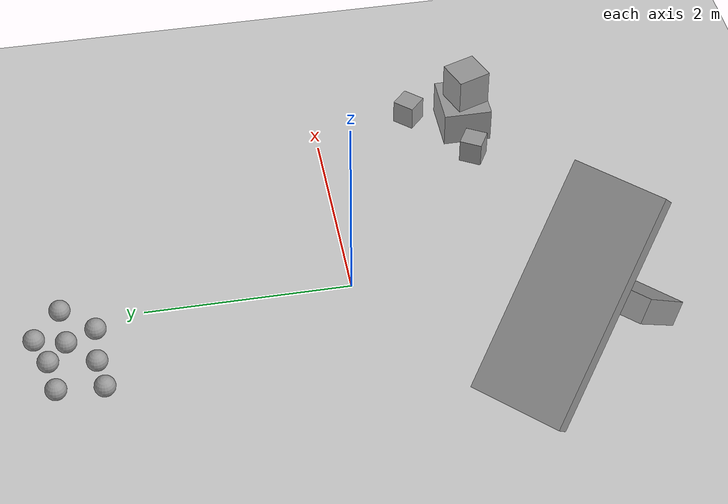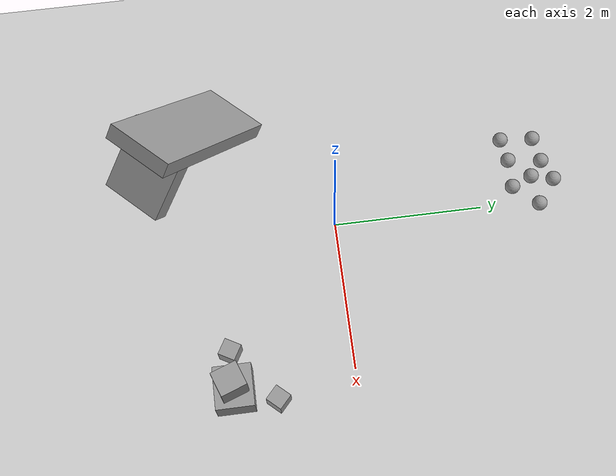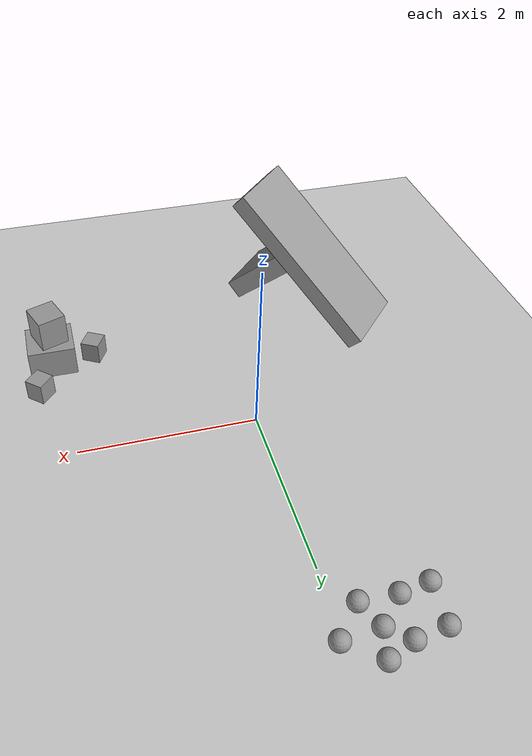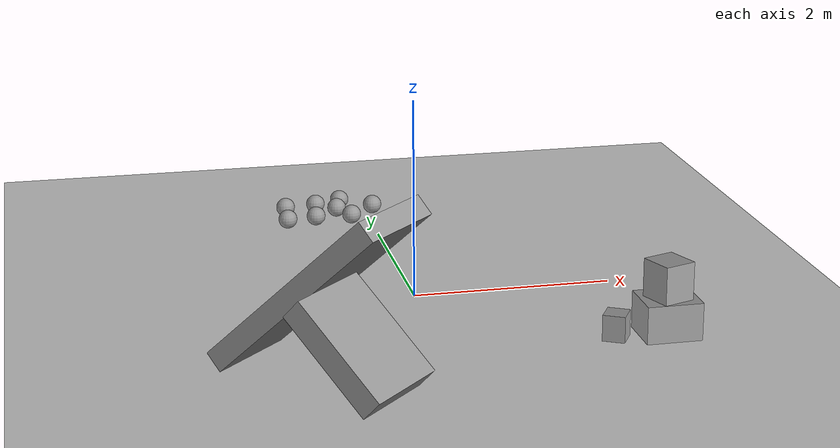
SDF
<sdf version="1.7">
 <world name="default">
  <light name="sun" type="directional">
   <pose>0 0 10 0 -0 0</pose>
   <diffuse>0.8 0.8 0.8 1</diffuse>
   <specular>0.2 0.2 0.2 1</specular>
   <attenuation>
    <range>1000</range>
    <constant>0.9</constant>
    <linear>0.01</linear>
    <quadratic>0.001</quadratic>
   </attenuation>
   <direction>-0.5 0.1 -0.9</direction>
   <spot><inner_angle>0</inner_angle><outer_angle>0</outer_angle><falloff>0</falloff></spot>
  </light>
  <model name="ground_plane">
   <static>1</static>
   <link name="link">
    <collision name="collision">
     <geometry><plane><normal>0 0 1</normal><size>100 100</size></plane></geometry>
     <surface><friction><ode><mu>100</mu><mu2>50</mu2></ode></friction></surface>
    </collision>
    <visual name="visual">
     <cast_shadows>0</cast_shadows>
     <geometry><plane><normal>0 0 1</normal><size>100 100</size></plane></geometry>
     <material>
      <script><uri>file://media/materials/scripts/gazebo.material</uri><name>Gazebo/Grey</name></script>
     </material>
    </visual>
   </link>
  </model>
  <gravity>0 0 -9.8</gravity>
  <magnetic_field>6e-06 2.3e-05 -4.2e-05</magnetic_field>
  <atmosphere type="adiabatic"/>
  <physics type="ode">
   <max_step_size>0.001</max_step_size>
   <real_time_factor>1</real_time_factor>
   <real_time_update_rate>1000</real_time_update_rate>
  </physics>
  <scene><ambient>0.4 0.4 0.4 1</ambient><background>0.7 0.7 0.7 1</background><shadows>1</shadows></scene>
  <spherical_coordinates>
   <surface_model>EARTH_WGS84</surface_model>
   <latitude_deg>0</latitude_deg>
   <longitude_deg>0</longitude_deg>
   <elevation>0</elevation>
   <heading_deg>0</heading_deg>
  </spherical_coordinates>
  <model name="unit_box">
   <pose>-0.96118 -2.35549 0.469251 -0.819198 1e-06 0.801621</pose>
   <link name="link">
    <inertial>
     <mass>1</mass>
     <inertia>
      <ixx>0.166667</ixx>
      <ixy>0</ixy>
      <ixz>0</ixz>
      <iyy>0.166667</iyy>
      <iyz>0</iyz>
      <izz>0.166667</izz>
     </inertia>
    </inertial>
    <collision name="collision"><geometry><box><size>0.88045 0.240484 1.11716</size></box></geometry></collision>
    <visual name="visual">
     <geometry><box><size>0.88045 0.240484 1.11716</size></box></geometry>
     <material>
      <script><name>Gazebo/Grey</name><uri>file://media/materials/scripts/gazebo.material</uri></script>
     </material>
    </visual>
   </link>
  </model>
  <model name="unit_box_0">
   <pose>-1.23521 -1.77988 0.834694 0.834776 9e-06 0.801626</pose>
   <link name="link">
    <inertial>
     <mass>1</mass>
     <inertia>
      <ixx>0.166667</ixx>
      <ixy>0</ixy>
      <ixz>0</ixz>
      <iyy>0.166667</iyy>
      <iyz>0</iyz>
      <izz>0.166667</izz>
     </inertia>
    </inertial>
    <collision name="collision"><geometry><box><size>0.920019 0.210326 2.25443</size></box></geometry></collision>
    <visual name="visual">
     <geometry><box><size>0.920019 0.210326 2.25443</size></box></geometry>
     <material>
      <script><name>Gazebo/Grey</name><uri>file://media/materials/scripts/gazebo.material</uri></script>
     </material>
    </visual>
   </link>
  </model>
  <model name="unit_box_1">
   <pose>2.11253 -1.54261 0.184122 6.9e-05 8.5e-05 -9e-06</pose>
   <link name="link">
    <inertial>
     <mass>1</mass>
     <inertia>
      <ixx>0.166667</ixx>
      <ixy>0</ixy>
      <ixz>0</ixz>
      <iyy>0.166667</iyy>
      <iyz>0</iyz>
      <izz>0.166667</izz>
     </inertia>
    </inertial>
    <collision name="collision">
     <geometry><box><size>0.542464 0.488358 0.368621</size></box></geometry>
    </collision>
    <visual name="visual">
     <geometry><box><size>0.542464 0.488358 0.368621</size></box></geometry>
     <material>
      <script><name>Gazebo/Grey</name><uri>file://media/materials/scripts/gazebo.material</uri></script>
     </material>
    </visual>
   </link>
  </model>
  <model name="unit_box_2">
   <pose>2.1056 -1.56558 0.55521 9.4e-05 5.6e-05 0.353202</pose>
   <link name="link">
    <inertial>
     <mass>1</mass>
     <inertia>
      <ixx>0.166667</ixx>
      <ixy>0</ixy>
      <ixz>0</ixz>
      <iyy>0.166667</iyy>
      <iyz>0</iyz>
      <izz>0.166667</izz>
     </inertia>
    </inertial>
    <collision name="collision">
     <geometry><box><size>0.324994 0.344129 0.373557</size></box></geometry>
    </collision>
    <visual name="visual">
     <geometry><box><size>0.324994 0.344129 0.373557</size></box></geometry>
     <material>
      <script><name>Gazebo/Grey</name><uri>file://media/materials/scripts/gazebo.material</uri></script>
     </material>
    </visual>
   </link>
  </model>
  <model name="unit_box_3">
   <pose>2.29385 -1.00523 0.128925 4e-06 -4e-06 0.833265</pose>
   <link name="link">
    <inertial>
     <mass>1</mass>
     <inertia>
      <ixx>0.166667</ixx>
      <ixy>0</ixy>
      <ixz>0</ixz>
      <iyy>0.166667</iyy>
      <iyz>0</iyz>
      <izz>0.166667</izz>
     </inertia>
    </inertial>
    <collision name="collision">
     <geometry><box><size>0.226264 0.218138 0.257851</size></box></geometry>
    </collision>
    <visual name="visual">
     <geometry><box><size>0.226264 0.218138 0.257851</size></box></geometry>
     <material>
      <script><name>Gazebo/Grey</name><uri>file://media/materials/scripts/gazebo.material</uri></script>
     </material>
    </visual>
   </link>
  </model>
  <model name="unit_box_3_clone">
   <pose>1.61041 -1.552 0.128925 -3e-06 -5e-06 1.05807</pose>
   <link name="link">
    <inertial>
     <mass>1</mass>
     <inertia>
      <ixx>0.166667</ixx>
      <ixy>0</ixy>
      <ixz>0</ixz>
      <iyy>0.166667</iyy>
      <iyz>0</iyz>
      <izz>0.166667</izz>
     </inertia>
    </inertial>
    <collision name="collision">
     <geometry><box><size>0.226264 0.218138 0.257851</size></box></geometry>
    </collision>
    <visual name="visual">
     <geometry><box><size>0.226264 0.218138 0.257851</size></box></geometry>
     <material>
      <script><name>Gazebo/Grey</name><uri>file://media/materials/scripts/gazebo.material</uri></script>
     </material>
    </visual>
   </link>
  </model>
  <model name="unit_sphere">
   <pose>-0.334534 2.75163 0.102353 0 -0 0</pose>
   <link name="link">
    <inertial>
     <mass>1</mass>
     <inertia><ixx>0.1</ixx><ixy>0</ixy><ixz>0</ixz><iyy>0.1</iyy><iyz>0</iyz><izz>0.1</izz></inertia>
    </inertial>
    <collision name="collision"><geometry><sphere><radius>0.102353</radius></sphere></geometry></collision>
    <visual name="visual">
     <geometry><sphere><radius>0.102353</radius></sphere></geometry>
     <material>
      <script><name>Gazebo/Grey</name><uri>file://media/materials/scripts/gazebo.material</uri></script>
     </material>
    </visual>
   </link>
  </model>
  <model name="unit_sphere_clone">
   <pose>-0.547634 2.93245 0.102353 0 -0 0</pose>
   <link name="link">
    <inertial>
     <mass>1</mass>
     <inertia><ixx>0.1</ixx><ixy>0</ixy><ixz>0</ixz><iyy>0.1</iyy><iyz>0</iyz><izz>0.1</izz></inertia>
    </inertial>
    <collision name="collision"><geometry><sphere><radius>0.102353</radius></sphere></geometry></collision>
    <visual name="visual">
     <geometry><sphere><radius>0.102353</radius></sphere></geometry>
     <material>
      <script><name>Gazebo/Grey</name><uri>file://media/materials/scripts/gazebo.material</uri></script>
     </material>
    </visual>
   </link>
  </model>
  <model name="unit_sphere_clone_0">
   <pose>-0.257265 3.04645 0.102353 0 -0 0</pose>
   <link name="link">
    <inertial>
     <mass>1</mass>
     <inertia><ixx>0.1</ixx><ixy>0</ixy><ixz>0</ixz><iyy>0.1</iyy><iyz>0</iyz><izz>0.1</izz></inertia>
    </inertial>
    <collision name="collision"><geometry><sphere><radius>0.102353</radius></sphere></geometry></collision>
    <visual name="visual">
     <geometry><sphere><radius>0.102353</radius></sphere></geometry>
     <material>
      <script><name>Gazebo/Grey</name><uri>file://media/materials/scripts/gazebo.material</uri></script>
     </material>
    </visual>
   </link>
  </model>
  <model name="unit_sphere_clone_0_clone">
   <pose>-0.608109 2.48474 0.102353 0 -0 0</pose>
   <link name="link">
    <inertial>
     <mass>1</mass>
     <inertia><ixx>0.1</ixx><ixy>0</ixy><ixz>0</ixz><iyy>0.1</iyy><iyz>0</iyz><izz>0.1</izz></inertia>
    </inertial>
    <collision name="collision"><geometry><sphere><radius>0.102353</radius></sphere></geometry></collision>
    <visual name="visual">
     <geometry><sphere><radius>0.102353</radius></sphere></geometry>
     <material>
      <script><name>Gazebo/Grey</name><uri>file://media/materials/scripts/gazebo.material</uri></script>
     </material>
    </visual>
   </link>
  </model>
  <model name="unit_sphere_clone_1">
   <pose>-0.21145 2.46966 0.102353 0 -0 0</pose>
   <link name="link">
    <inertial>
     <mass>1</mass>
     <inertia><ixx>0.1</ixx><ixy>0</ixy><ixz>0</ixz><iyy>0.1</iyy><iyz>0</iyz><izz>0.1</izz></inertia>
    </inertial>
    <collision name="collision"><geometry><sphere><radius>0.102353</radius></sphere></geometry></collision>
    <visual name="visual">
     <geometry><sphere><radius>0.102353</radius></sphere></geometry>
     <material>
      <script><name>Gazebo/Grey</name><uri>file://media/materials/scripts/gazebo.material</uri></script>
     </material>
    </visual>
   </link>
  </model>
  <model name="unit_sphere_clone_2">
   <pose>0.077834 2.78687 0.102353 0 -0 0</pose>
   <link name="link">
    <inertial>
     <mass>1</mass>
     <inertia><ixx>0.1</ixx><ixy>0</ixy><ixz>0</ixz><iyy>0.1</iyy><iyz>0</iyz><izz>0.1</izz></inertia>
    </inertial>
    <collision name="collision"><geometry><sphere><radius>0.102353</radius></sphere></geometry></collision>
    <visual name="visual">
     <geometry><sphere><radius>0.102353</radius></sphere></geometry>
     <material>
      <script><name>Gazebo/Grey</name><uri>file://media/materials/scripts/gazebo.material</uri></script>
     </material>
    </visual>
   </link>
  </model>
  <model name="unit_sphere_clone_0_clone_clone">
   <pose>-0.894134 2.88104 0.102353 0 -0 0</pose>
   <link name="link">
    <inertial>
     <mass>1</mass>
     <inertia><ixx>0.1</ixx><ixy>0</ixy><ixz>0</ixz><iyy>0.1</iyy><iyz>0</iyz><izz>0.1</izz></inertia>
    </inertial>
    <collision name="collision"><geometry><sphere><radius>0.102353</radius></sphere></geometry></collision>
    <visual name="visual">
     <geometry><sphere><radius>0.102353</radius></sphere></geometry>
     <material>
      <script><name>Gazebo/Grey</name><uri>file://media/materials/scripts/gazebo.material</uri></script>
     </material>
    </visual>
   </link>
  </model>
  <model name="unit_sphere_clone_0_clone_clone_0">
   <pose>-0.928633 2.43824 0.102353 0 -0 0</pose>
   <link name="link">
    <inertial>
     <mass>1</mass>
     <inertia><ixx>0.1</ixx><ixy>0</ixy><ixz>0</ixz><iyy>0.1</iyy><iyz>0</iyz><izz>0.1</izz></inertia>
    </inertial>
    <collision name="collision"><geometry><sphere><radius>0.102353</radius></sphere></geometry></collision>
    <visual name="visual">
     <geometry><sphere><radius>0.102353</radius></sphere></geometry>
     <material>
      <script><name>Gazebo/Grey</name><uri>file://media/materials/scripts/gazebo.material</uri></script>
     </material>
    </visual>
   </link>
  </model>
 </world>
</sdf>
